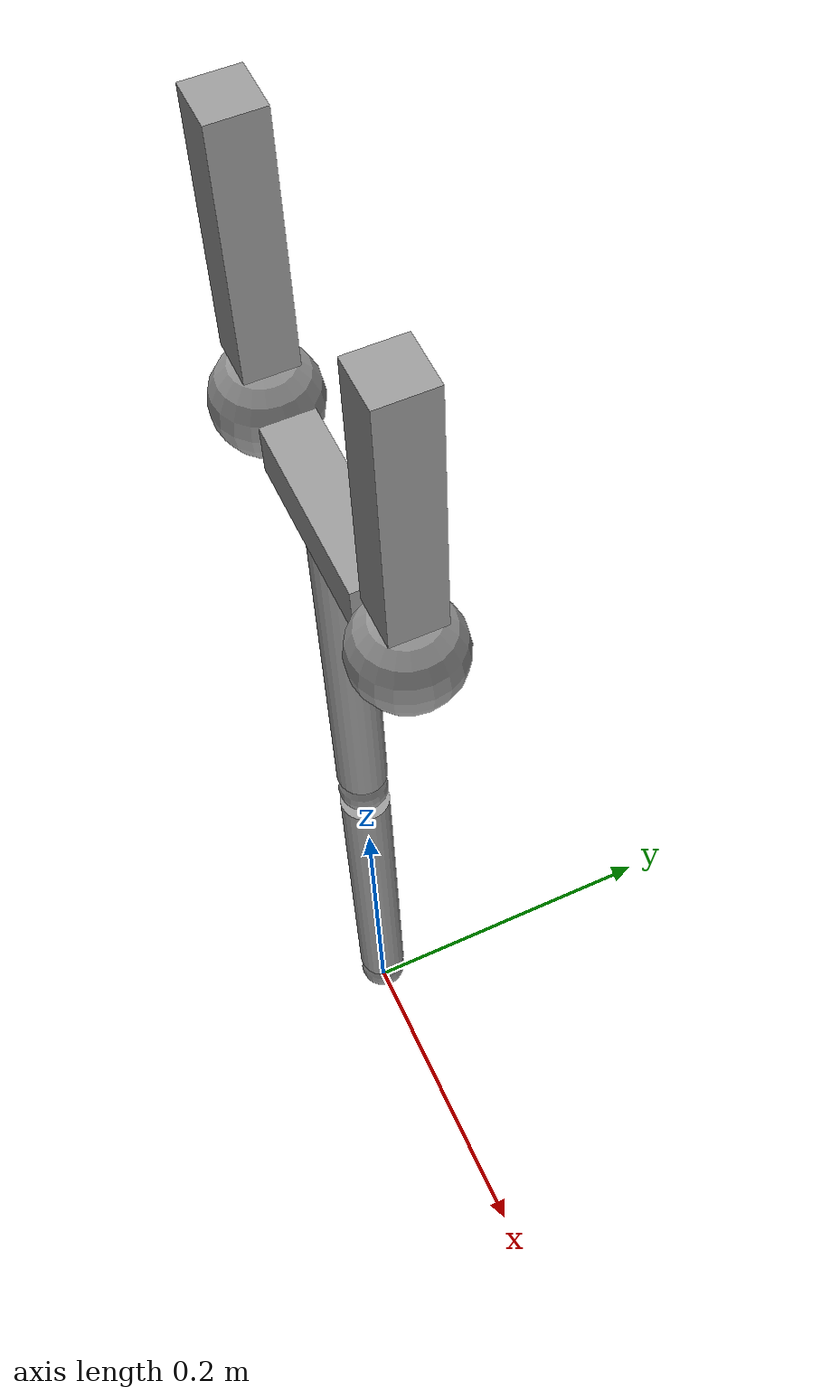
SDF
<?xml version='1.0'?>
<sdf version='1.7'>
  <model name='braco_antebraco_garra'>
    <link name='link_0'>
      <inertial>
        <mass>0.175</mass>
        <inertia>
          <ixx>0.0175</ixx>
          <ixy>0</ixy>
          <ixz>0</ixz>
          <iyy>0.0175</iyy>
          <iyz>0</iyz>
          <izz>0.0175</izz>
        </inertia>
        <pose>0 0 0 0 -0 0</pose>
      </inertial>
      <pose>0.0 0 0.015 0 -0 0</pose>
      <gravity>1</gravity>
      <self_collide>1</self_collide>
      <kinematic>0</kinematic>
      <enable_wind>0</enable_wind>
      <visual name='visual'>
        <pose>0 0 0 0 -0 0</pose>
        <geometry>
          <sphere>
            <radius>0.015</radius>
          </sphere>
        </geometry>
        <material>
          <lighting>1</lighting>
          <script>
            <uri>file://media/materials/scripts/gazebo.material</uri>
            <name>Gazebo/Grey</name>
          </script>
          <shader type='pixel'>
            <normal_map>__default__</normal_map>
          </shader>
          <ambient>0.3 0.3 0.3 1</ambient>
          <diffuse>0.7 0.7 0.7 1</diffuse>
          <specular>0.01 0.01 0.01 1</specular>
          <emissive>0 0 0 1</emissive>
        </material>
        <transparency>0</transparency>
        <cast_shadows>1</cast_shadows>
      </visual>
      <collision name='collision'>
        <laser_retro>0</laser_retro>
        <max_contacts>10</max_contacts>
        <pose>0 0 0 0 -0 0</pose>
        <geometry>
          <sphere>
            <radius>0.015</radius>
          </sphere>
        </geometry>
        <surface>
          <friction>
            <ode>
              <mu>1</mu>
              <mu2>1</mu2>
              <fdir1>0 0 0</fdir1>
              <slip1>0</slip1>
              <slip2>0</slip2>
            </ode>
            <torsional>
              <coefficient>1</coefficient>
              <patch_radius>0</patch_radius>
              <surface_radius>0</surface_radius>
              <use_patch_radius>1</use_patch_radius>
              <ode>
                <slip>0</slip>
              </ode>
            </torsional>
          </friction>
          <bounce>
            <restitution_coefficient>0</restitution_coefficient>
            <threshold>1e+06</threshold>
          </bounce>
          <contact>
            <collide_without_contact>0</collide_without_contact>
            <collide_without_contact_bitmask>1</collide_without_contact_bitmask>
            <collide_bitmask>1</collide_bitmask>
            <ode>
              <soft_cfm>0</soft_cfm>
              <soft_erp>0.2</soft_erp>
              <kp>1e+13</kp>
              <kd>1</kd>
              <max_vel>0.01</max_vel>
              <min_depth>0</min_depth>
            </ode>
            <bullet>
              <split_impulse>1</split_impulse>
              <split_impulse_penetration_threshold>-0.01</split_impulse_penetration_threshold>
              <soft_cfm>0</soft_cfm>
              <soft_erp>0.2</soft_erp>
              <kp>1e+13</kp>
              <kd>1</kd>
            </bullet>
          </contact>
        </surface>
      </collision>
    </link>

    <link name='link_1'>
      <inertial>
        <mass>1.924</mass>
        <inertia>
          <ixx>0.280583</ixx>
          <ixy>0</ixy>
          <ixz>0</ixz>
          <iyy>0.280583</iyy>
          <iyz>0</iyz>
          <izz>0.2405</izz>
        </inertia>
        <pose>0 0 0 0 -0 0</pose>
      </inertial>
      <pose>0.00 0 0.14 0 -0 0</pose>
      <gravity>1</gravity>
      <self_collide>1</self_collide>
      <kinematic>0</kinematic>
      <enable_wind>0</enable_wind>
      <visual name='visual'>
        <pose>0 0 0 0 -0 0</pose>
        <geometry>
          <cylinder>
            <radius>0.015</radius>
            <length>0.22</length>
          </cylinder>
        </geometry>
        <material>
          <lighting>1</lighting>
          <script>
            <uri>file://media/materials/scripts/gazebo.material</uri>
            <name>Gazebo/Grey</name>
          </script>
          <shader type='pixel'>
            <normal_map>__default__</normal_map>
          </shader>
          <ambient>0.3 0.3 0.3 1</ambient>
          <diffuse>0.7 0.7 0.7 1</diffuse>
          <specular>0.01 0.01 0.01 1</specular>
          <emissive>0 0 0 1</emissive>
        </material>
        <transparency>0</transparency>
        <cast_shadows>1</cast_shadows>
      </visual>
      <collision name='collision'>
        <laser_retro>0</laser_retro>
        <max_contacts>10</max_contacts>
        <pose>0 0 0 0 -0 0</pose>
        <geometry>
          <cylinder>
            <radius>0.015</radius>
            <length>0.22</length>
          </cylinder>
        </geometry>
        <surface>
          <friction>
            <ode>
              <mu>1</mu>
              <mu2>1</mu2>
              <fdir1>0 0 0</fdir1>
              <slip1>0</slip1>
              <slip2>0</slip2>
            </ode>
            <torsional>
              <coefficient>1</coefficient>
              <patch_radius>0</patch_radius>
              <surface_radius>0</surface_radius>
              <use_patch_radius>1</use_patch_radius>
              <ode>
                <slip>0</slip>
              </ode>
            </torsional>
          </friction>
          <bounce>
            <restitution_coefficient>0</restitution_coefficient>
            <threshold>1e+06</threshold>
          </bounce>
          <contact>
            <collide_without_contact>0</collide_without_contact>
            <collide_without_contact_bitmask>1</collide_without_contact_bitmask>
            <collide_bitmask>1</collide_bitmask>
            <ode>
              <soft_cfm>0</soft_cfm>
              <soft_erp>0.2</soft_erp>
              <kp>1e+13</kp>
              <kd>1</kd>
              <max_vel>0.01</max_vel>
              <min_depth>0</min_depth>
            </ode>
            <bullet>
              <split_impulse>1</split_impulse>
              <split_impulse_penetration_threshold>-0.01</split_impulse_penetration_threshold>
              <soft_cfm>0</soft_cfm>
              <soft_erp>0.2</soft_erp>
              <kp>1e+13</kp>
              <kd>1</kd>
            </bullet>
          </contact>
        </surface>
      </collision>
    </link>

    <link name='link_2'>
      <inertial>
        <mass>0.175</mass>
        <inertia>
          <ixx>0.0175</ixx>
          <ixy>0</ixy>
          <ixz>0</ixz>
          <iyy>0.0175</iyy>
          <iyz>0</iyz>
          <izz>0.0175</izz>
        </inertia>
        <pose>0 0 0 0 -0 0</pose>
      </inertial>
      <pose>0.00 0 0.265 0 -0 0</pose>
      <gravity>1</gravity>
      <self_collide>1</self_collide>
      <kinematic>0</kinematic>
      <enable_wind>0</enable_wind>
      <visual name='visual'>
        <pose>0 0 0 0 -0 0</pose>
        <geometry>
          <sphere>
            <radius>0.015</radius>
          </sphere>
        </geometry>
        <material>
          <lighting>1</lighting>
          <script>
            <uri>file://media/materials/scripts/gazebo.material</uri>
            <name>Gazebo/Grey</name>
          </script>
          <shader type='pixel'>
            <normal_map>__default__</normal_map>
          </shader>
          <ambient>0.3 0.3 0.3 1</ambient>
          <diffuse>0.7 0.7 0.7 1</diffuse>
          <specular>0.01 0.01 0.01 1</specular>
          <emissive>0 0 0 1</emissive>
        </material>
        <transparency>0</transparency>
        <cast_shadows>1</cast_shadows>
      </visual>
      <collision name='collision'>
        <laser_retro>0</laser_retro>
        <max_contacts>10</max_contacts>
        <pose>0 0 0 0 -0 0</pose>
        <geometry>
          <sphere>
            <radius>0.015</radius>
          </sphere>
        </geometry>
        <surface>
          <friction>
            <ode>
              <mu>1</mu>
              <mu2>1</mu2>
              <fdir1>0 0 0</fdir1>
              <slip1>0</slip1>
              <slip2>0</slip2>
            </ode>
            <torsional>
              <coefficient>1</coefficient>
              <patch_radius>0</patch_radius>
              <surface_radius>0</surface_radius>
              <use_patch_radius>1</use_patch_radius>
              <ode>
                <slip>0</slip>
              </ode>
            </torsional>
          </friction>
          <bounce>
            <restitution_coefficient>0</restitution_coefficient>
            <threshold>1e+06</threshold>
          </bounce>
          <contact>
            <collide_without_contact>0</collide_without_contact>
            <collide_without_contact_bitmask>1</collide_without_contact_bitmask>
            <collide_bitmask>1</collide_bitmask>
            <ode>
              <soft_cfm>0</soft_cfm>
              <soft_erp>0.2</soft_erp>
              <kp>1e+13</kp>
              <kd>1</kd>
              <max_vel>0.01</max_vel>
              <min_depth>0</min_depth>
            </ode>
            <bullet>
              <split_impulse>1</split_impulse>
              <split_impulse_penetration_threshold>-0.01</split_impulse_penetration_threshold>
              <soft_cfm>0</soft_cfm>
              <soft_erp>0.2</soft_erp>
              <kp>1e+13</kp>
              <kd>1</kd>
            </bullet>
          </contact>
        </surface>
      </collision>
    </link>

    <link name='link_3'>
      <inertial>
        <mass>1.184</mass>
        <inertia>
          <ixx>0.00484207</ixx>
          <ixy>0</ixy>
          <ixz>0</ixz>
          <iyy>0.00484207</iyy>
          <iyz>0</iyz>
          <izz>0.0001332</izz>
        </inertia>
        <pose>0 0 0 0 -0 0</pose>
      </inertial>
      <pose>0.00 0 0.39 0 -0 0</pose>
      <gravity>1</gravity>
      <self_collide>1</self_collide>
      <kinematic>0</kinematic>
      <enable_wind>0</enable_wind>
      <visual name='visual'>
        <pose>0 0 0 0 -0 0</pose>
        <geometry>
          <cylinder>
            <radius>0.015</radius>
            <length>0.22</length>
          </cylinder>
        </geometry>
        <material>
          <lighting>1</lighting>
          <script>
            <uri>file://media/materials/scripts/gazebo.material</uri>
            <name>Gazebo/Grey</name>
          </script>
          <shader type='pixel'>
            <normal_map>__default__</normal_map>
          </shader>
          <ambient>0.3 0.3 0.3 1</ambient>
          <diffuse>0.7 0.7 0.7 1</diffuse>
          <specular>0.01 0.01 0.01 1</specular>
          <emissive>0 0 0 1</emissive>
        </material>
        <transparency>0</transparency>
        <cast_shadows>1</cast_shadows>
      </visual>
      <collision name='collision'>
        <laser_retro>0</laser_retro>
        <max_contacts>10</max_contacts>
        <pose>0 0 0 0 -0 0</pose>
        <geometry>
          <cylinder>
            <radius>0.015</radius>
            <length>0.22</length>
          </cylinder>
        </geometry>
        <surface>
          <friction>
            <ode>
              <mu>1</mu>
              <mu2>1</mu2>
              <fdir1>0 0 0</fdir1>
              <slip1>0</slip1>
              <slip2>0</slip2>
            </ode>
            <torsional>
              <coefficient>1</coefficient>
              <patch_radius>0</patch_radius>
              <surface_radius>0</surface_radius>
              <use_patch_radius>1</use_patch_radius>
              <ode>
                <slip>0</slip>
              </ode>
            </torsional>
          </friction>
          <bounce>
            <restitution_coefficient>0</restitution_coefficient>
            <threshold>1e+06</threshold>
          </bounce>
          <contact>
            <collide_without_contact>0</collide_without_contact>
            <collide_without_contact_bitmask>1</collide_without_contact_bitmask>
            <collide_bitmask>1</collide_bitmask>
            <ode>
              <soft_cfm>0</soft_cfm>
              <soft_erp>0.2</soft_erp>
              <kp>1e+13</kp>
              <kd>1</kd>
              <max_vel>0.01</max_vel>
              <min_depth>0</min_depth>
            </ode>
            <bullet>
              <split_impulse>1</split_impulse>
              <split_impulse_penetration_threshold>-0.01</split_impulse_penetration_threshold>
              <soft_cfm>0</soft_cfm>
              <soft_erp>0.2</soft_erp>
              <kp>1e+13</kp>
              <kd>1</kd>
            </bullet>
          </contact>
        </surface>
      </collision>
    </link>

    <link name='link_4'>
      <inertial>
        <mass>0.15</mass>
        <inertia>
          <ixx>0.025</ixx>
          <ixy>0</ixy>
          <ixz>0</ixz>
          <iyy>0.025</iyy>
          <iyz>0</iyz>
          <izz>0.025</izz>
        </inertia>
        <pose>0 0 0 0 -0 0</pose>
      </inertial>
      <pose>0.0 0.0 0.515 0 -0 0</pose>
      <gravity>1</gravity>
      <self_collide>1</self_collide>
      <kinematic>0</kinematic>
      <enable_wind>0</enable_wind>
      <visual name='visual'>
        <pose>0 0 0 0 -0 0</pose>
        <geometry>
          <box>
            <size>0.11 0.03 0.03</size>
          </box>
        </geometry>
        <material>
          <lighting>1</lighting>
          <script>
            <uri>file://media/materials/scripts/gazebo.material</uri>
            <name>Gazebo/Grey</name>
          </script>
          <shader type='pixel'>
            <normal_map>__default__</normal_map>
          </shader>
          <ambient>0.3 0.3 0.3 1</ambient>
          <diffuse>0.7 0.7 0.7 1</diffuse>
          <specular>0.01 0.01 0.01 1</specular>
          <emissive>0 0 0 1</emissive>
        </material>
        <transparency>0</transparency>
        <cast_shadows>1</cast_shadows>
      </visual>
      <collision name='collision'>
        <laser_retro>0</laser_retro>
        <max_contacts>10</max_contacts>
        <pose>0 0 0 0 -0 0</pose>
        <geometry>
          <box>
            <size>0.11 0.03 0.03</size>
          </box>
        </geometry>
        <surface>
          <friction>
            <ode>
              <mu>1</mu>
              <mu2>1</mu2>
              <fdir1>0 0 0</fdir1>
              <slip1>0</slip1>
              <slip2>0</slip2>
            </ode>
            <torsional>
              <coefficient>1</coefficient>
              <patch_radius>0</patch_radius>
              <surface_radius>0</surface_radius>
              <use_patch_radius>1</use_patch_radius>
              <ode>
                <slip>0</slip>
              </ode>
            </torsional>
          </friction>
          <bounce>
            <restitution_coefficient>0</restitution_coefficient>
            <threshold>1e+06</threshold>
          </bounce>
          <contact>
            <collide_without_contact>0</collide_without_contact>
            <collide_without_contact_bitmask>1</collide_without_contact_bitmask>
            <collide_bitmask>1</collide_bitmask>
            <ode>
              <soft_cfm>0</soft_cfm>
              <soft_erp>0.2</soft_erp>
              <kp>1e+13</kp>
              <kd>1</kd>
              <max_vel>0.01</max_vel>
              <min_depth>0</min_depth>
            </ode>
            <bullet>
              <split_impulse>1</split_impulse>
              <split_impulse_penetration_threshold>-0.01</split_impulse_penetration_threshold>
              <soft_cfm>0</soft_cfm>
              <soft_erp>0.2</soft_erp>
              <kp>1e+13</kp>
              <kd>1</kd>
            </bullet>
          </contact>
        </surface>
      </collision>
    </link>

    <link name='link_5'>
      <inertial>
        <mass>0.05</mass>
        <inertia>
          <ixx>4.5e-06</ixx>
          <ixy>0</ixy>
          <ixz>0</ixz>
          <iyy>4.5e-06</iyy>
          <iyz>0</iyz>
          <izz>4.5e-06</izz>
        </inertia>
        <pose>0 0 0 0 -0 0</pose>
      </inertial>
      <pose>-0.085 0.0 0.515 0 -0 0</pose>
      <gravity>1</gravity>
      <self_collide>1</self_collide>
      <kinematic>0</kinematic>
      <enable_wind>0</enable_wind>
      <visual name='visual'>
        <pose>0 0 0 0 -0 0</pose>
        <geometry>
          <sphere>
            <radius>0.03</radius>
          </sphere>
        </geometry>
        <material>
          <lighting>1</lighting>
          <script>
            <uri>file://media/materials/scripts/gazebo.material</uri>
            <name>Gazebo/Grey</name>
          </script>
          <shader type='pixel'>
            <normal_map>__default__</normal_map>
          </shader>
          <ambient>0.3 0.3 0.3 1</ambient>
          <diffuse>0.7 0.7 0.7 1</diffuse>
          <specular>0.01 0.01 0.01 1</specular>
          <emissive>0 0 0 1</emissive>
        </material>
        <transparency>0</transparency>
        <cast_shadows>1</cast_shadows>
      </visual>
      <collision name='collision'>
        <laser_retro>0</laser_retro>
        <max_contacts>10</max_contacts>
        <pose>0 0 0 0 -0 0</pose>
        <geometry>
          <sphere>
            <radius>0.03</radius>
          </sphere>
        </geometry>
        <surface>
          <friction>
            <ode>
              <mu>1</mu>
              <mu2>1</mu2>
              <fdir1>0 0 0</fdir1>
              <slip1>0</slip1>
              <slip2>0</slip2>
            </ode>
            <torsional>
              <coefficient>1</coefficient>
              <patch_radius>0</patch_radius>
              <surface_radius>0</surface_radius>
              <use_patch_radius>1</use_patch_radius>
              <ode>
                <slip>0</slip>
              </ode>
            </torsional>
          </friction>
          <bounce>
            <restitution_coefficient>0</restitution_coefficient>
            <threshold>1e+06</threshold>
          </bounce>
          <contact>
            <collide_without_contact>0</collide_without_contact>
            <collide_without_contact_bitmask>1</collide_without_contact_bitmask>
            <collide_bitmask>1</collide_bitmask>
            <ode>
              <soft_cfm>0</soft_cfm>
              <soft_erp>0.2</soft_erp>
              <kp>1e+13</kp>
              <kd>1</kd>
              <max_vel>0.01</max_vel>
              <min_depth>0</min_depth>
            </ode>
            <bullet>
              <split_impulse>1</split_impulse>
              <split_impulse_penetration_threshold>-0.01</split_impulse_penetration_threshold>
              <soft_cfm>0</soft_cfm>
              <soft_erp>0.2</soft_erp>
              <kp>1e+13</kp>
              <kd>1</kd>
            </bullet>
          </contact>
        </surface>
      </collision>
    </link>

    <link name='link_6'>
      <inertial>
        <mass>0.05</mass>
        <inertia>
          <ixx>4.5e-06</ixx>
          <ixy>0</ixy>
          <ixz>0</ixz>
          <iyy>4.5e-06</iyy>
          <iyz>0</iyz>
          <izz>4.5e-06</izz>
        </inertia>
        <pose>0 0 0 0 -0 0</pose>
      </inertial>
      <pose>0.085 0.0 0.515 0 -0 0</pose>
      <gravity>1</gravity>
      <self_collide>1</self_collide>
      <kinematic>0</kinematic>
      <enable_wind>0</enable_wind>
      <visual name='visual'>
        <pose>0 0 0 0 -0 0</pose>
        <geometry>
          <sphere>
            <radius>0.03</radius>
          </sphere>
        </geometry>
        <material>
          <lighting>1</lighting>
          <script>
            <uri>file://media/materials/scripts/gazebo.material</uri>
            <name>Gazebo/Grey</name>
          </script>
          <shader type='pixel'>
            <normal_map>__default__</normal_map>
          </shader>
          <ambient>0.3 0.3 0.3 1</ambient>
          <diffuse>0.7 0.7 0.7 1</diffuse>
          <specular>0.01 0.01 0.01 1</specular>
          <emissive>0 0 0 1</emissive>
        </material>
        <transparency>0</transparency>
        <cast_shadows>1</cast_shadows>
      </visual>
      <collision name='collision'>
        <laser_retro>0</laser_retro>
        <max_contacts>10</max_contacts>
        <pose>0 0 0 0 -0 0</pose>
        <geometry>
          <sphere>
            <radius>0.03</radius>
          </sphere>
        </geometry>
        <surface>
          <friction>
            <ode>
              <mu>1</mu>
              <mu2>1</mu2>
              <fdir1>0 0 0</fdir1>
              <slip1>0</slip1>
              <slip2>0</slip2>
            </ode>
            <torsional>
              <coefficient>1</coefficient>
              <patch_radius>0</patch_radius>
              <surface_radius>0</surface_radius>
              <use_patch_radius>1</use_patch_radius>
              <ode>
                <slip>0</slip>
              </ode>
            </torsional>
          </friction>
          <bounce>
            <restitution_coefficient>0</restitution_coefficient>
            <threshold>1e+06</threshold>
          </bounce>
          <contact>
            <collide_without_contact>0</collide_without_contact>
            <collide_without_contact_bitmask>1</collide_without_contact_bitmask>
            <collide_bitmask>1</collide_bitmask>
            <ode>
              <soft_cfm>0</soft_cfm>
              <soft_erp>0.2</soft_erp>
              <kp>1e+13</kp>
              <kd>1</kd>
              <max_vel>0.01</max_vel>
              <min_depth>0</min_depth>
            </ode>
            <bullet>
              <split_impulse>1</split_impulse>
              <split_impulse_penetration_threshold>-0.01</split_impulse_penetration_threshold>
              <soft_cfm>0</soft_cfm>
              <soft_erp>0.2</soft_erp>
              <kp>1e+13</kp>
              <kd>1</kd>
            </bullet>
          </contact>
        </surface>
      </collision>
    </link>

    <link name='link_7'>
      <inertial>
        <mass>0.125</mass>
        <inertia>
          <ixx>0.00024375</ixx>
          <ixy>0</ixy>
          <ixz>0</ixz>
          <iyy>0.00024375</iyy>
          <iyz>0</iyz>
          <izz>1.875e-05</izz>
        </inertia>
        <pose>0 0 0 0 -0 0</pose>
      </inertial>
      <pose>-0.085 0.0 0.62 0 -0 0</pose>
      <gravity>1</gravity>
      <self_collide>1</self_collide>
      <kinematic>0</kinematic>
      <enable_wind>0</enable_wind>
      <visual name='visual'>
        <pose>0 0 0 0 -0 0</pose>
        <geometry>
          <box>
            <size>0.03 0.03 0.15</size>
          </box>
        </geometry>
        <material>
          <lighting>1</lighting>
          <script>
            <uri>file://media/materials/scripts/gazebo.material</uri>
            <name>Gazebo/Grey</name>
          </script>
          <shader type='pixel'>
            <normal_map>__default__</normal_map>
          </shader>
          <ambient>0.3 0.3 0.3 1</ambient>
          <diffuse>0.7 0.7 0.7 1</diffuse>
          <specular>0.01 0.01 0.01 1</specular>
          <emissive>0 0 0 1</emissive>
        </material>
        <transparency>0</transparency>
        <cast_shadows>1</cast_shadows>
      </visual>
      <collision name='collision'>
        <laser_retro>0</laser_retro>
        <max_contacts>100</max_contacts>
        <pose>0 0 0 0 -0 0</pose>
        <geometry>
          <cylinder>
            <radius>0.015</radius>
            <length>0.15</length>
          </cylinder>
        </geometry>
        <surface>
          <friction>
            <ode>
              <mu>1000000</mu>
              <mu2>2000000</mu2>
              <fdir1>0 0 0</fdir1>
              <slip1>0</slip1>
              <slip2>0</slip2>
            </ode>
            <torsional>
              <coefficient>1</coefficient>
              <patch_radius>0</patch_radius>
              <surface_radius>0</surface_radius>
              <use_patch_radius>1</use_patch_radius>
              <ode>
                <slip>0</slip>
              </ode>
            </torsional>
          </friction>
          <bounce>
            <restitution_coefficient>0</restitution_coefficient>
            <threshold>1e+06</threshold>
          </bounce>
          <contact>
            <collide_without_contact>0</collide_without_contact>
            <collide_without_contact_bitmask>1</collide_without_contact_bitmask>
            <collide_bitmask>1</collide_bitmask>
            <ode>
              <soft_cfm>0</soft_cfm>
              <soft_erp>0.2</soft_erp>
              <kp>1e+13</kp>
              <kd>1e+13</kd>
              <max_vel>0.001</max_vel>
              <min_depth>0.02</min_depth>
            </ode>
            <bullet>
              <split_impulse>1</split_impulse>
              <split_impulse_penetration_threshold>-0.01</split_impulse_penetration_threshold>
              <soft_cfm>0</soft_cfm>
              <soft_erp>0.2</soft_erp>
              <kp>1e+13</kp>
              <kd>1e+13</kd>
            </bullet>
          </contact>
        </surface>
      </collision>
    </link>

    <link name='link_8'>
      <inertial>
        <mass>0.125</mass>
        <inertia>
          <ixx>0.00024375</ixx>
          <ixy>0</ixy>
          <ixz>0</ixz>
          <iyy>0.00024375</iyy>
          <iyz>0</iyz>
          <izz>1.875e-05</izz>
        </inertia>
        <pose>0 0 0 0 -0 0</pose>
      </inertial>
      <pose>0.085 0.0 0.62 0 -0 0</pose>
      <gravity>1</gravity>
      <self_collide>1</self_collide>
      <kinematic>0</kinematic>
      <enable_wind>0</enable_wind>
      <visual name='visual'>
        <pose>0 0 0 0 -0 0</pose>
        <geometry>
          <box>
            <size>0.03 0.03 0.15</size>
          </box>
        </geometry>
        <material>
          <lighting>1</lighting>
          <script>
            <uri>file://media/materials/scripts/gazebo.material</uri>
            <name>Gazebo/Grey</name>
          </script>
          <shader type='pixel'>
            <normal_map>__default__</normal_map>
          </shader>
          <ambient>0.3 0.3 0.3 1</ambient>
          <diffuse>0.7 0.7 0.7 1</diffuse>
          <specular>0.01 0.01 0.01 1</specular>
          <emissive>0 0 0 1</emissive>
        </material>
        <transparency>0</transparency>
        <cast_shadows>1</cast_shadows>
      </visual>
      <collision name='collision'>
        <laser_retro>0</laser_retro>
        <max_contacts>100</max_contacts>
        <pose>0 0 0 0 -0 0</pose>
        <geometry>
          <cylinder>
            <radius>0.015</radius>
            <length>0.15</length>
          </cylinder>
        </geometry>
        <surface>
          <friction>
            <ode>
              <mu>1000000</mu>
              <mu2>2000000</mu2>
              <fdir1>0 0 0</fdir1>
              <slip1>0</slip1>
              <slip2>0</slip2>
            </ode>
            <torsional>
              <coefficient>1</coefficient>
              <patch_radius>0</patch_radius>
              <surface_radius>0</surface_radius>
              <use_patch_radius>1</use_patch_radius>
              <ode>
                <slip>0</slip>
              </ode>
            </torsional>
          </friction>
          <bounce>
            <restitution_coefficient>0</restitution_coefficient>
            <threshold>1e+06</threshold>
          </bounce>
          <contact>
            <collide_without_contact>0</collide_without_contact>
            <collide_without_contact_bitmask>1</collide_without_contact_bitmask>
            <collide_bitmask>1</collide_bitmask>
            <ode>
              <soft_cfm>0</soft_cfm>
              <soft_erp>0.2</soft_erp>
              <kp>1e+13</kp>
              <kd>1e+13</kd>
              <max_vel>0.001</max_vel>
              <min_depth>0.02</min_depth>
            </ode>
            <bullet>
              <split_impulse>1</split_impulse>
              <split_impulse_penetration_threshold>-0.01</split_impulse_penetration_threshold>
              <soft_cfm>0</soft_cfm>
              <soft_erp>0.2</soft_erp>
              <kp>1e+13</kp>
              <kd>1e+13</kd>
            </bullet>
          </contact>
        </surface>
      </collision>
    </link>

    <joint name="world_JOINT_0" type="revolute">
      <parent>world</parent>
      <child>link_0</child>
      <axis>
        <xyz>1 0 0</xyz>
        <limit>
          <lower>-3.15</lower>
          <upper>3.15</upper>
          <effort>-1</effort>
          <velocity>-1</velocity>
        </limit>
        <dynamics>
          <spring_reference>0</spring_reference>
          <spring_stiffness>0</spring_stiffness>
          <damping>0</damping>
        </dynamics>
      </axis>
    </joint>

    <joint name='link_0_JOINT_0' type='fixed'>
      <parent>link_0</parent>
      <child>link_1</child>
      <pose>0 0 0 0 -0 0</pose>
      <physics>
        <ode>
          <limit>
            <cfm>0</cfm>
            <erp>0.2</erp>
          </limit>
          <suspension>
            <cfm>0</cfm>
            <erp>0.2</erp>
          </suspension>
        </ode>
      </physics>
    </joint>

<joint name='link_1_JOINT_0' type='revolute'>
      <parent>link_1</parent>
      <child>link_2</child>
      <pose>0 0 0 0 -0 0</pose>
      <axis>
        <xyz>1 0 0</xyz>
        <limit>
          <lower>-3.15</lower>
          <upper>3.15</upper>
          <effort>-1</effort>
          <velocity>-1</velocity>
        </limit>
        <dynamics>
          <spring_reference>0</spring_reference>
          <spring_stiffness>0</spring_stiffness>
          <damping>0</damping>
        </dynamics>
      </axis>
      <physics>
        <ode>
          <limit>
            <cfm>0</cfm>
            <erp>0.2</erp>
          </limit>
          <suspension>
            <cfm>0</cfm>
            <erp>0.2</erp>
          </suspension>
        </ode>
      </physics>
    </joint>

    <joint name='link_2_JOINT_0' type='fixed'>
      <parent>link_2</parent>
      <child>link_3</child>
      <pose>0 0 0 0 -0 0</pose>
      <physics>
        <ode>
          <limit>
            <cfm>0</cfm>
            <erp>0.2</erp>
          </limit>
          <suspension>
            <cfm>0</cfm>
            <erp>0.2</erp>
          </suspension>
        </ode>
      </physics>
    </joint>

  <joint name='link_3_JOINT_0' type='fixed'>
      <parent>link_3</parent>
      <child>link_4</child>
      <pose>0 0 0 0 -0 0</pose>
      <physics>
        <ode>
          <limit>
            <cfm>0</cfm>
            <erp>0.2</erp>
          </limit>
          <suspension>
            <cfm>0</cfm>
            <erp>0.2</erp>
          </suspension>
        </ode>
      </physics>
    </joint>

    <joint name='link_4_JOINT_0' type='prismatic'>
      <parent>link_4</parent>
      <child>link_5</child>
      <pose>0 0 0 0 -0 0</pose>
      <axis>
        <xyz>1 0 0</xyz>
        <limit>
          <lower>-0.04</lower>
          <upper>0.04</upper>
          <effort>-1</effort>
          <velocity>-1</velocity>
        </limit>
        <dynamics>
          <spring_reference>0</spring_reference>
          <spring_stiffness>0</spring_stiffness>
          <damping>0</damping>
        </dynamics>
      </axis>
      <physics>
        <ode>
          <limit>
            <cfm>0</cfm>
            <erp>0.2</erp>
          </limit>
          <suspension>
            <cfm>0</cfm>
            <erp>0.2</erp>
          </suspension>
        </ode>
      </physics>
    </joint>

    <joint name='link_4_JOINT_1' type='prismatic'>
      <parent>link_4</parent>
      <child>link_6</child>
      <pose>0 0 0 0 -0 0</pose>
      <axis>
        <xyz>1 0 0</xyz>
        <limit>
          <lower>-0.04</lower>
          <upper>0.04</upper>
          <effort>-1</effort>
          <velocity>-1</velocity>
        </limit>
        <dynamics>
          <spring_reference>0</spring_reference>
          <spring_stiffness>0</spring_stiffness>
          <damping>0</damping>
          <friction>0</friction>
        </dynamics>
      </axis>
      <physics>
        <ode>
          <limit>
            <cfm>0</cfm>
            <erp>0.2</erp>
          </limit>
          <suspension>
            <cfm>0</cfm>
            <erp>0.2</erp>
          </suspension>
        </ode>
      </physics>
    </joint>

    <joint name='link_5_JOINT_0' type='fixed'>
      <parent>link_5</parent>
      <child>link_7</child>
      <pose>0 0 0 0 -0 0</pose>
      <physics>
        <ode>
          <limit>
            <cfm>0</cfm>
            <erp>0.2</erp>
          </limit>
          <suspension>
            <cfm>0</cfm>
            <erp>0.2</erp>
          </suspension>
        </ode>
      </physics>
    </joint>

    <joint name='link_6_JOINT_0' type='fixed'>
      <parent>link_6</parent>
      <child>link_8</child>
      <pose>0 0 0 0 -0 0</pose>
      <physics>
        <ode>
          <limit>
            <cfm>0</cfm>
            <erp>0.2</erp>
          </limit>
          <suspension>
            <cfm>0</cfm>
            <erp>0.2</erp>
          </suspension>
        </ode>
      </physics>
    </joint>

    <static>0</static>
    <allow_auto_disable>1</allow_auto_disable>
    <plugin name="joint_control" filename="libarm_control.so">

    <ros>

    </ros>

    <!-- Update rate in Hertz -->
    <update_rate>1000</update_rate>

    <!-- Name of joints in the model whose states will be published. -->
    <joint_name>world_JOINT_0</joint_name>
    <joint_name>link_1_JOINT_0</joint_name>
    <joint_name>link_4_JOINT_0</joint_name>
    <joint_name>link_4_JOINT_1</joint_name>

    </plugin>
  </model>
</sdf>
